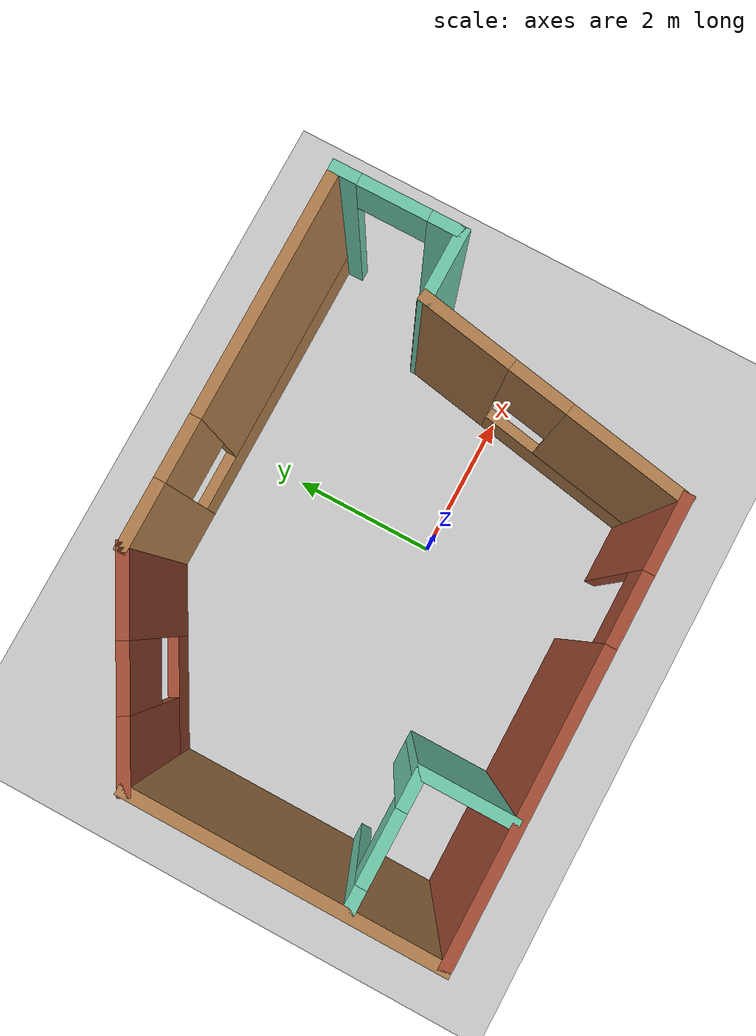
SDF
<sdf version="1.6">
 <world name="default">
  <light name="sun" type="directional">
   <pose>0 0 10 0 -0 0</pose>
   <diffuse>0.8 0.8 0.8 1</diffuse>
   <specular>0.1 0.1 0.1 1</specular>
   <attenuation>
    <range>1000</range>
    <constant>0.9</constant>
    <linear>0.01</linear>
    <quadratic>0.001</quadratic>
   </attenuation>
   <direction>-0.5 0.5 -1</direction>
  </light>
  <model name="ground_plane">
   <static>1</static>
   <link name="link">
    <collision name="collision">
     <geometry><plane><normal>0 0 1</normal><size>100 100</size></plane></geometry>
     <surface><friction><ode><mu>100</mu><mu2>50</mu2></ode></friction></surface>
    </collision>
    <visual name="visual">
     <cast_shadows>0</cast_shadows>
     <geometry><plane><normal>0 0 1</normal><size>100 100</size></plane></geometry>
     <material>
      <script><uri>file://media/materials/scripts/gazebo.material</uri><name>Gazebo/Grey</name></script>
     </material>
    </visual>
   </link>
  </model>
  <gravity>0 0 -9.8</gravity>
  <magnetic_field>6e-06 2.3e-05 -4.2e-05</magnetic_field>
  <atmosphere type="adiabatic"/>
  <physics name="default_physics" default="0" type="ode">
   <max_step_size>0.001</max_step_size>
   <real_time_factor>1</real_time_factor>
   <real_time_update_rate>1000</real_time_update_rate>
  </physics>
  <scene><ambient>0.4 0.4 0.4 1</ambient><background>0.7 0.7 0.7 1</background><shadows>1</shadows></scene>
  <spherical_coordinates>
   <surface_model>EARTH_WGS84</surface_model>
   <latitude_deg>0</latitude_deg>
   <longitude_deg>0</longitude_deg>
   <elevation>0</elevation>
   <heading_deg>0</heading_deg>
  </spherical_coordinates>
  <model name="room">
   <pose>-0.504559 0.362571 0 0 -0 0</pose>
   <link name="Wall_10">
    <pose>-2.41127 1.91743 0 0 0 -2.61799</pose>
    <visual name="Wall_10_Visual_0">
     <pose>-0.830587 0 1.25 0 -0 0</pose>
     <geometry><box><size>1.08882 0.15 2.5</size></box></geometry>
     <material>
      <script><uri>file://media/materials/scripts/gazebo.material</uri><name>Gazebo/Bricks</name></script>
      <ambient>1 1 1 1</ambient>
     </material>
    </visual>
    <collision name="Wall_10_Collision_0">
     <geometry><box><size>1.08882 0.15 2.5</size></box></geometry>
     <pose>-0.830587 0 1.25 0 -0 0</pose>
    </collision>
    <visual name="Wall_10_Visual_1">
     <pose>0.544413 0 0.25 0 -0 0</pose>
     <geometry><box><size>1.66118 0.15 0.5</size></box></geometry>
     <material>
      <script><uri>file://media/materials/scripts/gazebo.material</uri><name>Gazebo/Bricks</name></script>
      <ambient>1 1 1 1</ambient>
     </material>
    </visual>
    <collision name="Wall_10_Collision_1">
     <geometry><box><size>1.66118 0.15 0.5</size></box></geometry>
     <pose>0.544413 0 0.25 0 -0 0</pose>
    </collision>
    <visual name="Wall_10_Visual_2">
     <pose>0.944413 0 1.5 0 -0 0</pose>
     <geometry><box><size>0.861175 0.15 2</size></box></geometry>
     <material>
      <script><uri>file://media/materials/scripts/gazebo.material</uri><name>Gazebo/Bricks</name></script>
      <ambient>1 1 1 1</ambient>
     </material>
    </visual>
    <collision name="Wall_10_Collision_2">
     <geometry><box><size>0.861175 0.15 2</size></box></geometry>
     <pose>0.944413 0 1.5 0 -0 0</pose>
    </collision>
    <visual name="Wall_10_Visual_3">
     <pose>0.113825 0 1.9 0 -0 0</pose>
     <geometry><box><size>0.8 0.15 1.2</size></box></geometry>
     <material>
      <script><uri>file://media/materials/scripts/gazebo.material</uri><name>Gazebo/Bricks</name></script>
      <ambient>1 1 1 1</ambient>
     </material>
    </visual>
    <collision name="Wall_10_Collision_3">
     <geometry><box><size>0.8 0.15 1.2</size></box></geometry>
     <pose>0.113825 0 1.9 0 -0 0</pose>
    </collision>
   </link>
   <link name="Wall_11">
    <collision name="Wall_11_Collision">
     <geometry><box><size>4 0.15 2.5</size></box></geometry>
     <pose>0 0 1.25 0 -0 0</pose>
    </collision>
    <visual name="Wall_11_Visual">
     <pose>0 0 1.25 0 -0 0</pose>
     <geometry><box><size>4 0.15 2.5</size></box></geometry>
     <material>
      <script><uri>file://media/materials/scripts/gazebo.material</uri><name>Gazebo/Wood</name></script>
      <ambient>1 1 1 1</ambient>
     </material>
    </visual>
    <pose>-3.53711 -0.657571 0 0 0 -1.5708</pose>
   </link>
   <link name="Wall_12">
    <pose>-0.737107 -2.58257 0 0 -0 0</pose>
    <visual name="Wall_12_Visual_0">
     <pose>-0.941747 0 1.25 0 -0 0</pose>
     <geometry><box><size>3.86651 0.15 2.5</size></box></geometry>
     <material>
      <script><uri>file://media/materials/scripts/gazebo.material</uri><name>Gazebo/Bricks</name></script>
      <ambient>1 1 1 1</ambient>
     </material>
    </visual>
    <collision name="Wall_12_Collision_0">
     <geometry><box><size>3.86651 0.15 2.5</size></box></geometry>
     <pose>-0.941747 0 1.25 0 -0 0</pose>
    </collision>
    <visual name="Wall_12_Visual_1">
     <pose>2.38325 0 1.25 0 -0 0</pose>
     <geometry><box><size>0.983494 0.15 2.5</size></box></geometry>
     <material>
      <script><uri>file://media/materials/scripts/gazebo.material</uri><name>Gazebo/Bricks</name></script>
      <ambient>1 1 1 1</ambient>
     </material>
    </visual>
    <collision name="Wall_12_Collision_1">
     <geometry><box><size>0.983494 0.15 2.5</size></box></geometry>
     <pose>2.38325 0 1.25 0 -0 0</pose>
    </collision>
    <visual name="Wall_12_Visual_2">
     <pose>1.44151 0 2.25 0 -0 0</pose>
     <geometry><box><size>0.9 0.15 0.5</size></box></geometry>
     <material>
      <script><uri>file://media/materials/scripts/gazebo.material</uri><name>Gazebo/Bricks</name></script>
      <ambient>1 1 1 1</ambient>
     </material>
    </visual>
    <collision name="Wall_12_Collision_2">
     <geometry><box><size>0.9 0.15 0.5</size></box></geometry>
     <pose>1.44151 0 2.25 0 -0 0</pose>
    </collision>
   </link>
   <link name="Wall_15">
    <pose>2.38873 -0.807571 0 0 0 -1.75234</pose>
    <visual name="Wall_15_Visual_0">
     <pose>-1.23535 0 1.25 0 -0 0</pose>
     <geometry><box><size>1.28862 0.15 2.5</size></box></geometry>
     <material>
      <script><uri>file://media/materials/scripts/gazebo.material</uri><name>Gazebo/Wood</name></script>
      <ambient>1 1 1 1</ambient>
     </material>
    </visual>
    <collision name="Wall_15_Collision_0">
     <geometry><box><size>1.28862 0.15 2.5</size></box></geometry>
     <pose>-1.23535 0 1.25 0 -0 0</pose>
    </collision>
    <visual name="Wall_15_Visual_1">
     <pose>0.644309 0 0.25 0 -0 0</pose>
     <geometry><box><size>2.4707 0.15 0.5</size></box></geometry>
     <material>
      <script><uri>file://media/materials/scripts/gazebo.material</uri><name>Gazebo/Wood</name></script>
      <ambient>1 1 1 1</ambient>
     </material>
    </visual>
    <collision name="Wall_15_Collision_1">
     <geometry><box><size>2.4707 0.15 0.5</size></box></geometry>
     <pose>0.644309 0 0.25 0 -0 0</pose>
    </collision>
    <visual name="Wall_15_Visual_2">
     <pose>1.04431 0 1.5 0 -0 0</pose>
     <geometry><box><size>1.6707 0.15 2</size></box></geometry>
     <material>
      <script><uri>file://media/materials/scripts/gazebo.material</uri><name>Gazebo/Wood</name></script>
      <ambient>1 1 1 1</ambient>
     </material>
    </visual>
    <collision name="Wall_15_Collision_2">
     <geometry><box><size>1.6707 0.15 2</size></box></geometry>
     <pose>1.04431 0 1.5 0 -0 0</pose>
    </collision>
    <visual name="Wall_15_Visual_3">
     <pose>-0.191041 0 1.9 0 -0 0</pose>
     <geometry><box><size>0.8 0.15 1.2</size></box></geometry>
     <material>
      <script><uri>file://media/materials/scripts/gazebo.material</uri><name>Gazebo/Wood</name></script>
      <ambient>1 1 1 1</ambient>
     </material>
    </visual>
    <collision name="Wall_15_Collision_3">
     <geometry><box><size>0.8 0.15 1.2</size></box></geometry>
     <pose>-0.191041 0 1.9 0 -0 0</pose>
    </collision>
   </link>
   <link name="Wall_20">
    <pose>-2.67922 -1.41515 0 0 -0 0</pose>
    <visual name="Wall_20_Visual_0">
     <pose>-0.710512 0 1.25 0 -0 0</pose>
     <geometry><box><size>0.328975 0.15 2.5</size></box></geometry>
     <material>
      <script><uri>file://media/materials/scripts/gazebo.material</uri><name>Gazebo/Grey</name></script>
      <ambient>0.435294 0.796078 0.67451 1</ambient>
     </material>
    </visual>
    <collision name="Wall_20_Collision_0">
     <geometry><box><size>0.328975 0.15 2.5</size></box></geometry>
     <pose>-0.710512 0 1.25 0 -0 0</pose>
    </collision>
    <visual name="Wall_20_Visual_1">
     <pose>0.614488 0 1.25 0 -0 0</pose>
     <geometry><box><size>0.521025 0.15 2.5</size></box></geometry>
     <material>
      <script><uri>file://media/materials/scripts/gazebo.material</uri><name>Gazebo/Grey</name></script>
      <ambient>0.435294 0.796078 0.67451 1</ambient>
     </material>
    </visual>
    <collision name="Wall_20_Collision_1">
     <geometry><box><size>0.521025 0.15 2.5</size></box></geometry>
     <pose>0.614488 0 1.25 0 -0 0</pose>
    </collision>
    <visual name="Wall_20_Visual_2">
     <pose>-0.096025 0 2.25 0 -0 0</pose>
     <geometry><box><size>0.9 0.15 0.5</size></box></geometry>
     <material>
      <script><uri>file://media/materials/scripts/gazebo.material</uri><name>Gazebo/Grey</name></script>
      <ambient>0.435294 0.796078 0.67451 1</ambient>
     </material>
    </visual>
    <collision name="Wall_20_Collision_2">
     <geometry><box><size>0.9 0.15 0.5</size></box></geometry>
     <pose>-0.096025 0 2.25 0 -0 0</pose>
    </collision>
   </link>
   <link name="Wall_21">
    <collision name="Wall_21_Collision">
     <geometry><box><size>1.25 0.15 2.5</size></box></geometry>
     <pose>0 0 1.25 0 -0 0</pose>
    </collision>
    <visual name="Wall_21_Visual">
     <pose>0 0 1.25 0 -0 0</pose>
     <geometry><box><size>1.25 0.15 2.5</size></box></geometry>
     <material>
      <script><uri>file://media/materials/scripts/gazebo.material</uri><name>Gazebo/Grey</name></script>
      <ambient>0.435294 0.796078 0.67451 1</ambient>
     </material>
    </visual>
    <pose>-1.87922 -1.96515 0 0 0 -1.5708</pose>
   </link>
   <link name="Wall_4">
    <pose>1.13956 2.56743 0 0 -0 0</pose>
    <visual name="Wall_4_Visual_0">
     <pose>-2.04974 0 1.25 0 -0 0</pose>
     <geometry><box><size>0.900524 0.15 2.5</size></box></geometry>
     <material>
      <script><uri>file://media/materials/scripts/gazebo.material</uri><name>Gazebo/Wood</name></script>
      <ambient>1 1 1 1</ambient>
     </material>
    </visual>
    <collision name="Wall_4_Collision_0">
     <geometry><box><size>0.900524 0.15 2.5</size></box></geometry>
     <pose>-2.04974 0 1.25 0 -0 0</pose>
    </collision>
    <visual name="Wall_4_Visual_1">
     <pose>0.450262 0 0.25 0 -0 0</pose>
     <geometry><box><size>4.09948 0.15 0.5</size></box></geometry>
     <material>
      <script><uri>file://media/materials/scripts/gazebo.material</uri><name>Gazebo/Wood</name></script>
      <ambient>1 1 1 1</ambient>
     </material>
    </visual>
    <collision name="Wall_4_Collision_1">
     <geometry><box><size>4.09948 0.15 0.5</size></box></geometry>
     <pose>0.450262 0 0.25 0 -0 0</pose>
    </collision>
    <visual name="Wall_4_Visual_2">
     <pose>0.850262 0 1.5 0 -0 0</pose>
     <geometry><box><size>3.29948 0.15 2</size></box></geometry>
     <material>
      <script><uri>file://media/materials/scripts/gazebo.material</uri><name>Gazebo/Wood</name></script>
      <ambient>1 1 1 1</ambient>
     </material>
    </visual>
    <collision name="Wall_4_Collision_2">
     <geometry><box><size>3.29948 0.15 2</size></box></geometry>
     <pose>0.850262 0 1.5 0 -0 0</pose>
    </collision>
    <visual name="Wall_4_Visual_3">
     <pose>-1.19948 0 1.9 0 -0 0</pose>
     <geometry><box><size>0.8 0.15 1.2</size></box></geometry>
     <material>
      <script><uri>file://media/materials/scripts/gazebo.material</uri><name>Gazebo/Wood</name></script>
      <ambient>1 1 1 1</ambient>
     </material>
    </visual>
    <collision name="Wall_4_Collision_3">
     <geometry><box><size>0.8 0.15 1.2</size></box></geometry>
     <pose>-1.19948 0 1.9 0 -0 0</pose>
    </collision>
   </link>
   <link name="Wall_5">
    <pose>3.56456 1.76743 0 0 0 -1.5708</pose>
    <visual name="Wall_5_Visual_0">
     <pose>-0.690355 0 1.25 0 -0 0</pose>
     <geometry><box><size>0.36929 0.15 2.5</size></box></geometry>
     <material>
      <script><uri>file://media/materials/scripts/gazebo.material</uri><name>Gazebo/Grey</name></script>
      <ambient>0.435294 0.796078 0.67451 1</ambient>
     </material>
    </visual>
    <collision name="Wall_5_Collision_0">
     <geometry><box><size>0.36929 0.15 2.5</size></box></geometry>
     <pose>-0.690355 0 1.25 0 -0 0</pose>
    </collision>
    <visual name="Wall_5_Visual_1">
     <pose>0.634645 0 1.25 0 -0 0</pose>
     <geometry><box><size>0.48071 0.15 2.5</size></box></geometry>
     <material>
      <script><uri>file://media/materials/scripts/gazebo.material</uri><name>Gazebo/Grey</name></script>
      <ambient>0.435294 0.796078 0.67451 1</ambient>
     </material>
    </visual>
    <collision name="Wall_5_Collision_1">
     <geometry><box><size>0.48071 0.15 2.5</size></box></geometry>
     <pose>0.634645 0 1.25 0 -0 0</pose>
    </collision>
    <visual name="Wall_5_Visual_2">
     <pose>-0.05571 0 2.25 0 -0 0</pose>
     <geometry><box><size>0.9 0.15 0.5</size></box></geometry>
     <material>
      <script><uri>file://media/materials/scripts/gazebo.material</uri><name>Gazebo/Grey</name></script>
      <ambient>0.435294 0.796078 0.67451 1</ambient>
     </material>
    </visual>
    <collision name="Wall_5_Collision_2">
     <geometry><box><size>0.9 0.15 0.5</size></box></geometry>
     <pose>-0.05571 0 2.25 0 -0 0</pose>
    </collision>
   </link>
   <link name="Wall_6">
    <collision name="Wall_6_Collision">
     <geometry><box><size>1 0.15 2.5</size></box></geometry>
     <pose>0 0 1.25 0 -0 0</pose>
    </collision>
    <visual name="Wall_6_Visual">
     <pose>0 0 1.25 0 -0 0</pose>
     <geometry><box><size>1 0.15 2.5</size></box></geometry>
     <material>
      <script><uri>file://media/materials/scripts/gazebo.material</uri><name>Gazebo/Grey</name></script>
      <ambient>0.435294 0.796078 0.67451 1</ambient>
     </material>
    </visual>
    <pose>3.13956 0.967429 0 0 -0 3.14159</pose>
   </link>
   <static>1</static>
  </model>
 </world>
</sdf>
